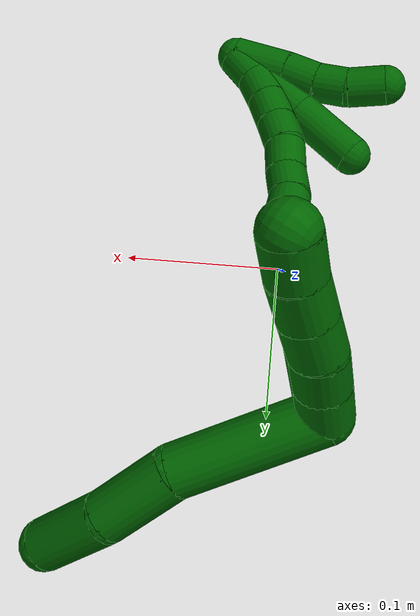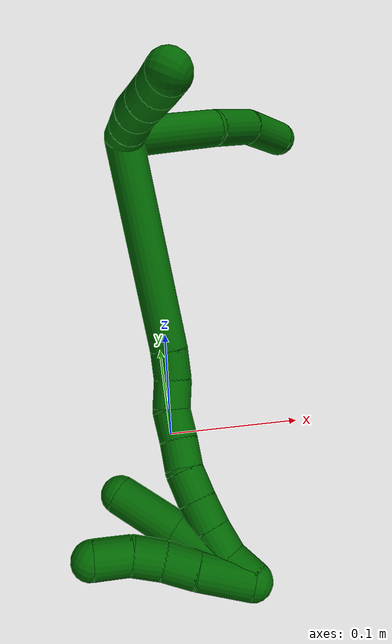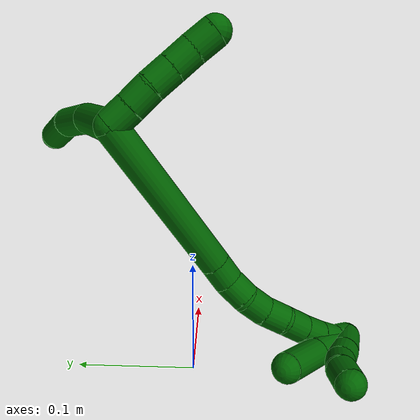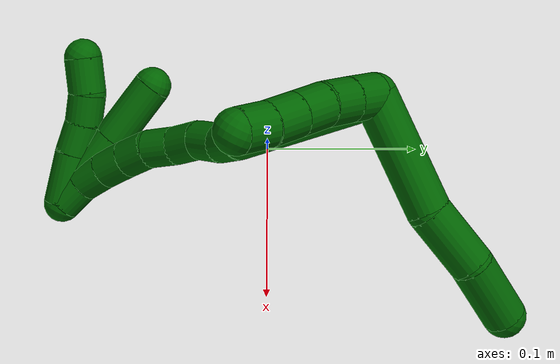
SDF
<sdf version="1.7">
 <world name="default">
  <model name="6">
   <static>0</static>
   <link name="6">
    <collision name="collision-cylinder-e_1_2_8">
     <pose>0.016595 0.022478 0.020988 -0.819665 0.494837 -0.218595</pose>
     <geometry><cylinder><radius>0.0125</radius><length>0.069891</length></cylinder></geometry>
     <surface>
      <friction><ode><mu>1.16</mu><mu2>1.16</mu2><slip1>0</slip1><slip2>0</slip2></ode></friction>
      <contact><ode><kp>1e+06</kp><kd>1</kd><max_vel>0</max_vel><min_depth>0.001</min_depth></ode></contact>
     </surface>
    </collision>
    <visual name="visual-cylinder-e_1_2_8">
     <pose>0.016595 0.022478 0.020988 -0.819665 0.494837 -0.218595</pose>
     <geometry><cylinder><radius>0.0125</radius><length>0.069891</length></cylinder></geometry>
     <material><ambient>0 0.392157 0.003922 1</ambient></material>
    </visual>
    <collision name="collision-cylinder-e_2_8_9">
     <pose>0.046605 0.056847 0.050135 -0.969421 0.749265 -0.40836</pose>
     <geometry><cylinder><radius>0.0125</radius><length>0.03939</length></cylinder></geometry>
     <surface>
      <friction><ode><mu>1.16</mu><mu2>1.16</mu2><slip1>0</slip1><slip2>0</slip2></ode></friction>
      <contact><ode><kp>1e+06</kp><kd>1</kd><max_vel>0</max_vel><min_depth>0.001</min_depth></ode></contact>
     </surface>
    </collision>
    <visual name="visual-cylinder-e_2_8_9">
     <pose>0.046605 0.056847 0.050135 -0.969421 0.749265 -0.40836</pose>
     <geometry><cylinder><radius>0.0125</radius><length>0.03939</length></cylinder></geometry>
     <material><ambient>0 0.392157 0.003922 1</ambient></material>
    </visual>
    <collision name="collision-cylinder-e_3_9_6">
     <pose>0.075659 0.076771 0.068559 -0.664021 0.876031 -0.32019</pose>
     <geometry><cylinder><radius>0.0125</radius><length>0.040719</length></cylinder></geometry>
     <surface>
      <friction><ode><mu>1.16</mu><mu2>1.16</mu2><slip1>0</slip1><slip2>0</slip2></ode></friction>
      <contact><ode><kp>1e+06</kp><kd>1</kd><max_vel>0</max_vel><min_depth>0.001</min_depth></ode></contact>
     </surface>
    </collision>
    <visual name="visual-cylinder-e_3_9_6">
     <pose>0.075659 0.076771 0.068559 -0.664021 0.876031 -0.32019</pose>
     <geometry><cylinder><radius>0.0125</radius><length>0.040719</length></cylinder></geometry>
     <material><ambient>0 0.392157 0.003922 1</ambient></material>
    </visual>
    <collision name="collision-cylinder-e_1_2_10">
     <pose>-0.009459 0.000251 0.003234 -0.077597 -1.24041 0.055435</pose>
     <geometry><cylinder><radius>0.0125</radius><length>0.02</length></cylinder></geometry>
     <surface>
      <friction><ode><mu>1.16</mu><mu2>1.16</mu2><slip1>0</slip1><slip2>0</slip2></ode></friction>
      <contact><ode><kp>1e+06</kp><kd>1</kd><max_vel>0</max_vel><min_depth>0.001</min_depth></ode></contact>
     </surface>
    </collision>
    <visual name="visual-cylinder-e_1_2_10">
     <pose>-0.009459 0.000251 0.003234 -0.077597 -1.24041 0.055435</pose>
     <geometry><cylinder><radius>0.0125</radius><length>0.02</length></cylinder></geometry>
     <material><ambient>0 0.392157 0.003922 1</ambient></material>
    </visual>
    <collision name="collision-cylinder-e_2_10_11">
     <pose>-0.028407 0.001203 0.009546 -0.223553 -1.24975 0.161571</pose>
     <geometry><cylinder><radius>0.0125</radius><length>0.02</length></cylinder></geometry>
     <surface>
      <friction><ode><mu>1.16</mu><mu2>1.16</mu2><slip1>0</slip1><slip2>0</slip2></ode></friction>
      <contact><ode><kp>1e+06</kp><kd>1</kd><max_vel>0</max_vel><min_depth>0.001</min_depth></ode></contact>
     </surface>
    </collision>
    <visual name="visual-cylinder-e_2_10_11">
     <pose>-0.028407 0.001203 0.009546 -0.223553 -1.24975 0.161571</pose>
     <geometry><cylinder><radius>0.0125</radius><length>0.02</length></cylinder></geometry>
     <material><ambient>0 0.392157 0.003922 1</ambient></material>
    </visual>
    <collision name="collision-cylinder-e_3_11_12">
     <pose>-0.046862 0.002539 0.017006 -0.144323 -1.1119 0.089767</pose>
     <geometry><cylinder><radius>0.0125</radius><length>0.02</length></cylinder></geometry>
     <surface>
      <friction><ode><mu>1.16</mu><mu2>1.16</mu2><slip1>0</slip1><slip2>0</slip2></ode></friction>
      <contact><ode><kp>1e+06</kp><kd>1</kd><max_vel>0</max_vel><min_depth>0.001</min_depth></ode></contact>
     </surface>
    </collision>
    <visual name="visual-cylinder-e_3_11_12">
     <pose>-0.046862 0.002539 0.017006 -0.144323 -1.1119 0.089767</pose>
     <geometry><cylinder><radius>0.0125</radius><length>0.02</length></cylinder></geometry>
     <material><ambient>0 0.392157 0.003922 1</ambient></material>
    </visual>
    <collision name="collision-cylinder-e_4_12_13">
     <pose>-0.064835 0.003855 0.02568 -0.156999 -1.12149 0.098717</pose>
     <geometry><cylinder><radius>0.0125</radius><length>0.02</length></cylinder></geometry>
     <surface>
      <friction><ode><mu>1.16</mu><mu2>1.16</mu2><slip1>0</slip1><slip2>0</slip2></ode></friction>
      <contact><ode><kp>1e+06</kp><kd>1</kd><max_vel>0</max_vel><min_depth>0.001</min_depth></ode></contact>
     </surface>
    </collision>
    <visual name="visual-cylinder-e_4_12_13">
     <pose>-0.064835 0.003855 0.02568 -0.156999 -1.12149 0.098717</pose>
     <geometry><cylinder><radius>0.0125</radius><length>0.02</length></cylinder></geometry>
     <material><ambient>0 0.392157 0.003922 1</ambient></material>
    </visual>
    <collision name="collision-cylinder-e_5_13_5">
     <pose>-0.083092 0.004482 0.033769 0.013704 -1.18104 -0.009186</pose>
     <geometry><cylinder><radius>0.0125</radius><length>0.02</length></cylinder></geometry>
     <surface>
      <friction><ode><mu>1.16</mu><mu2>1.16</mu2><slip1>0</slip1><slip2>0</slip2></ode></friction>
      <contact><ode><kp>1e+06</kp><kd>1</kd><max_vel>0</max_vel><min_depth>0.001</min_depth></ode></contact>
     </surface>
    </collision>
    <visual name="visual-cylinder-e_5_13_5">
     <pose>-0.083092 0.004482 0.033769 0.013704 -1.18104 -0.009186</pose>
     <geometry><cylinder><radius>0.0125</radius><length>0.02</length></cylinder></geometry>
     <material><ambient>0 0.392157 0.003922 1</ambient></material>
    </visual>
    <collision name="collision-cylinder-e_1_2_14">
     <pose>0.020474 -0.053508 0.039419 0.935864 0.298843 0.151867</pose>
     <geometry><cylinder><radius>0.0125</radius><length>0.139086</length></cylinder></geometry>
     <surface>
      <friction><ode><mu>1.16</mu><mu2>1.16</mu2><slip1>0</slip1><slip2>0</slip2></ode></friction>
      <contact><ode><kp>1e+06</kp><kd>1</kd><max_vel>0</max_vel><min_depth>0.001</min_depth></ode></contact>
     </surface>
    </collision>
    <visual name="visual-cylinder-e_1_2_14">
     <pose>0.020474 -0.053508 0.039419 0.935864 0.298843 0.151867</pose>
     <geometry><cylinder><radius>0.0125</radius><length>0.139086</length></cylinder></geometry>
     <material><ambient>0 0.392157 0.003922 1</ambient></material>
    </visual>
    <collision name="collision-cylinder-e_2_14_15">
     <pose>0.043743 -0.115296 0.083938 1.01879 0.279822 0.157003</pose>
     <geometry><cylinder><radius>0.0125</radius><length>0.020235</length></cylinder></geometry>
     <surface>
      <friction><ode><mu>1.16</mu><mu2>1.16</mu2><slip1>0</slip1><slip2>0</slip2></ode></friction>
      <contact><ode><kp>1e+06</kp><kd>1</kd><max_vel>0</max_vel><min_depth>0.001</min_depth></ode></contact>
     </surface>
    </collision>
    <visual name="visual-cylinder-e_2_14_15">
     <pose>0.043743 -0.115296 0.083938 1.01879 0.279822 0.157003</pose>
     <geometry><cylinder><radius>0.0125</radius><length>0.020235</length></cylinder></geometry>
     <material><ambient>0 0.392157 0.003922 1</ambient></material>
    </visual>
    <collision name="collision-cylinder-e_3_15_16">
     <pose>0.046954 -0.13292 0.092884 1.18029 0.041231 0.027617</pose>
     <geometry><cylinder><radius>0.0125</radius><length>0.020227</length></cylinder></geometry>
     <surface>
      <friction><ode><mu>1.16</mu><mu2>1.16</mu2><slip1>0</slip1><slip2>0</slip2></ode></friction>
      <contact><ode><kp>1e+06</kp><kd>1</kd><max_vel>0</max_vel><min_depth>0.001</min_depth></ode></contact>
     </surface>
    </collision>
    <visual name="visual-cylinder-e_3_15_16">
     <pose>0.046954 -0.13292 0.092884 1.18029 0.041231 0.027617</pose>
     <geometry><cylinder><radius>0.0125</radius><length>0.020227</length></cylinder></geometry>
     <material><ambient>0 0.392157 0.003922 1</ambient></material>
    </visual>
    <collision name="collision-cylinder-e_4_16_17">
     <pose>0.047632 -0.150163 0.103081 0.893544 0.025712 0.012319</pose>
     <geometry><cylinder><radius>0.0125</radius><length>0.020277</length></cylinder></geometry>
     <surface>
      <friction><ode><mu>1.16</mu><mu2>1.16</mu2><slip1>0</slip1><slip2>0</slip2></ode></friction>
      <contact><ode><kp>1e+06</kp><kd>1</kd><max_vel>0</max_vel><min_depth>0.001</min_depth></ode></contact>
     </surface>
    </collision>
    <visual name="visual-cylinder-e_4_16_17">
     <pose>0.047632 -0.150163 0.103081 0.893544 0.025712 0.012319</pose>
     <geometry><cylinder><radius>0.0125</radius><length>0.020277</length></cylinder></geometry>
     <material><ambient>0 0.392157 0.003922 1</ambient></material>
    </visual>
    <collision name="collision-cylinder-e_5_17_18">
     <pose>0.045919 -0.165971 0.115333 0.929889 -0.197346 -0.099234</pose>
     <geometry><cylinder><radius>0.0125</radius><length>0.020127</length></cylinder></geometry>
     <surface>
      <friction><ode><mu>1.16</mu><mu2>1.16</mu2><slip1>0</slip1><slip2>0</slip2></ode></friction>
      <contact><ode><kp>1e+06</kp><kd>1</kd><max_vel>0</max_vel><min_depth>0.001</min_depth></ode></contact>
     </surface>
    </collision>
    <visual name="visual-cylinder-e_5_17_18">
     <pose>0.045919 -0.165971 0.115333 0.929889 -0.197346 -0.099234</pose>
     <geometry><cylinder><radius>0.0125</radius><length>0.020127</length></cylinder></geometry>
     <material><ambient>0 0.392157 0.003922 1</ambient></material>
    </visual>
    <collision name="collision-cylinder-e_6_18_19">
     <pose>0.043586 -0.180518 0.128737 0.724212 -0.035971 -0.013627</pose>
     <geometry><cylinder><radius>0.0125</radius><length>0.020048</length></cylinder></geometry>
     <surface>
      <friction><ode><mu>1.16</mu><mu2>1.16</mu2><slip1>0</slip1><slip2>0</slip2></ode></friction>
      <contact><ode><kp>1e+06</kp><kd>1</kd><max_vel>0</max_vel><min_depth>0.001</min_depth></ode></contact>
     </surface>
    </collision>
    <visual name="visual-cylinder-e_6_18_19">
     <pose>0.043586 -0.180518 0.128737 0.724212 -0.035971 -0.013627</pose>
     <geometry><cylinder><radius>0.0125</radius><length>0.020048</length></cylinder></geometry>
     <material><ambient>0 0.392157 0.003922 1</ambient></material>
    </visual>
    <collision name="collision-cylinder-e_7_19_20">
     <pose>0.042514 -0.193373 0.144039 0.6731 -0.071219 -0.024926</pose>
     <geometry><cylinder><radius>0.0125</radius><length>0.02</length></cylinder></geometry>
     <surface>
      <friction><ode><mu>1.16</mu><mu2>1.16</mu2><slip1>0</slip1><slip2>0</slip2></ode></friction>
      <contact><ode><kp>1e+06</kp><kd>1</kd><max_vel>0</max_vel><min_depth>0.001</min_depth></ode></contact>
     </surface>
    </collision>
    <visual name="visual-cylinder-e_7_19_20">
     <pose>0.042514 -0.193373 0.144039 0.6731 -0.071219 -0.024926</pose>
     <geometry><cylinder><radius>0.0125</radius><length>0.02</length></cylinder></geometry>
     <material><ambient>0 0.392157 0.003922 1</ambient></material>
    </visual>
    <collision name="collision-cylinder-e_8_20_21">
     <pose>0.040941 -0.205119 0.160127 0.588114 -0.086181 -0.026113</pose>
     <geometry><cylinder><radius>0.0125</radius><length>0.02</length></cylinder></geometry>
     <surface>
      <friction><ode><mu>1.16</mu><mu2>1.16</mu2><slip1>0</slip1><slip2>0</slip2></ode></friction>
      <contact><ode><kp>1e+06</kp><kd>1</kd><max_vel>0</max_vel><min_depth>0.001</min_depth></ode></contact>
     </surface>
    </collision>
    <visual name="visual-cylinder-e_8_20_21">
     <pose>0.040941 -0.205119 0.160127 0.588114 -0.086181 -0.026113</pose>
     <geometry><cylinder><radius>0.0125</radius><length>0.02</length></cylinder></geometry>
     <material><ambient>0 0.392157 0.003922 1</ambient></material>
    </visual>
    <collision name="collision-cylinder-e_9_21_1">
     <pose>0.038445 -0.213229 0.177938 0.264891 -0.1643 -0.021937</pose>
     <geometry><cylinder><radius>0.0125</radius><length>0.02</length></cylinder></geometry>
     <surface>
      <friction><ode><mu>1.16</mu><mu2>1.16</mu2><slip1>0</slip1><slip2>0</slip2></ode></friction>
      <contact><ode><kp>1e+06</kp><kd>1</kd><max_vel>0</max_vel><min_depth>0.001</min_depth></ode></contact>
     </surface>
    </collision>
    <visual name="visual-cylinder-e_9_21_1">
     <pose>0.038445 -0.213229 0.177938 0.264891 -0.1643 -0.021937</pose>
     <geometry><cylinder><radius>0.0125</radius><length>0.02</length></cylinder></geometry>
     <material><ambient>0 0.392157 0.003922 1</ambient></material>
    </visual>
    <collision name="collision-cylinder-e_1_1_22">
     <pose>0.041268 -0.212855 0.160019 -3.03427 0.160185 -1.96209</pose>
     <geometry><cylinder><radius>0.0125</radius><length>0.055912</length></cylinder></geometry>
     <surface>
      <friction><ode><mu>1.16</mu><mu2>1.16</mu2><slip1>0</slip1><slip2>0</slip2></ode></friction>
      <contact><ode><kp>1e+06</kp><kd>1</kd><max_vel>0</max_vel><min_depth>0.001</min_depth></ode></contact>
     </surface>
    </collision>
    <visual name="visual-cylinder-e_1_1_22">
     <pose>0.041268 -0.212855 0.160019 -3.03427 0.160185 -1.96209</pose>
     <geometry><cylinder><radius>0.0125</radius><length>0.055912</length></cylinder></geometry>
     <material><ambient>0 0.392157 0.003922 1</ambient></material>
    </visual>
    <collision name="collision-cylinder-e_2_22_4">
     <pose>0.049103 -0.207651 0.110912 -3.03819 0.153731 -1.95835</pose>
     <geometry><cylinder><radius>0.0125</radius><length>0.044088</length></cylinder></geometry>
     <surface>
      <friction><ode><mu>1.16</mu><mu2>1.16</mu2><slip1>0</slip1><slip2>0</slip2></ode></friction>
      <contact><ode><kp>1e+06</kp><kd>1</kd><max_vel>0</max_vel><min_depth>0.001</min_depth></ode></contact>
     </surface>
    </collision>
    <visual name="visual-cylinder-e_2_22_4">
     <pose>0.049103 -0.207651 0.110912 -3.03819 0.153731 -1.95835</pose>
     <geometry><cylinder><radius>0.0125</radius><length>0.044088</length></cylinder></geometry>
     <material><ambient>0 0.392157 0.003922 1</ambient></material>
    </visual>
    <collision name="collision-cylinder-e_1_1_23">
     <pose>0.035049 -0.219709 0.170746 2.91247 -0.102227 -0.836725</pose>
     <geometry><cylinder><radius>0.0125</radius><length>0.034503</length></cylinder></geometry>
     <surface>
      <friction><ode><mu>1.16</mu><mu2>1.16</mu2><slip1>0</slip1><slip2>0</slip2></ode></friction>
      <contact><ode><kp>1e+06</kp><kd>1</kd><max_vel>0</max_vel><min_depth>0.001</min_depth></ode></contact>
     </surface>
    </collision>
    <visual name="visual-cylinder-e_1_1_23">
     <pose>0.035049 -0.219709 0.170746 2.91247 -0.102227 -0.836725</pose>
     <geometry><cylinder><radius>0.0125</radius><length>0.034503</length></cylinder></geometry>
     <material><ambient>0 0.392157 0.003922 1</ambient></material>
    </visual>
    <collision name="collision-cylinder-e_2_23_24">
     <pose>0.032786 -0.225269 0.143439 2.98594 -0.046815 -0.58329</pose>
     <geometry><cylinder><radius>0.0125</radius><length>0.021471</length></cylinder></geometry>
     <surface>
      <friction><ode><mu>1.16</mu><mu2>1.16</mu2><slip1>0</slip1><slip2>0</slip2></ode></friction>
      <contact><ode><kp>1e+06</kp><kd>1</kd><max_vel>0</max_vel><min_depth>0.001</min_depth></ode></contact>
     </surface>
    </collision>
    <visual name="visual-cylinder-e_2_23_24">
     <pose>0.032786 -0.225269 0.143439 2.98594 -0.046815 -0.58329</pose>
     <geometry><cylinder><radius>0.0125</radius><length>0.021471</length></cylinder></geometry>
     <material><ambient>0 0.392157 0.003922 1</ambient></material>
    </visual>
    <collision name="collision-cylinder-e_3_24_25">
     <pose>0.030084 -0.229327 0.123213 2.89784 -0.218111 -1.45889</pose>
     <geometry><cylinder><radius>0.0125</radius><length>0.020333</length></cylinder></geometry>
     <surface>
      <friction><ode><mu>1.16</mu><mu2>1.16</mu2><slip1>0</slip1><slip2>0</slip2></ode></friction>
      <contact><ode><kp>1e+06</kp><kd>1</kd><max_vel>0</max_vel><min_depth>0.001</min_depth></ode></contact>
     </surface>
    </collision>
    <visual name="visual-cylinder-e_3_24_25">
     <pose>0.030084 -0.229327 0.123213 2.89784 -0.218111 -1.45889</pose>
     <geometry><cylinder><radius>0.0125</radius><length>0.020333</length></cylinder></geometry>
     <material><ambient>0 0.392157 0.003922 1</ambient></material>
    </visual>
    <collision name="collision-cylinder-e_4_25_3">
     <pose>0.024256 -0.237192 0.103718 2.63524 -0.311274 -1.09031</pose>
     <geometry><cylinder><radius>0.0125</radius><length>0.023694</length></cylinder></geometry>
     <surface>
      <friction><ode><mu>1.16</mu><mu2>1.16</mu2><slip1>0</slip1><slip2>0</slip2></ode></friction>
      <contact><ode><kp>1e+06</kp><kd>1</kd><max_vel>0</max_vel><min_depth>0.001</min_depth></ode></contact>
     </surface>
    </collision>
    <visual name="visual-cylinder-e_4_25_3">
     <pose>0.024256 -0.237192 0.103718 2.63524 -0.311274 -1.09031</pose>
     <geometry><cylinder><radius>0.0125</radius><length>0.023694</length></cylinder></geometry>
     <material><ambient>0 0.392157 0.003922 1</ambient></material>
    </visual>
    <collision name="collision-sphere-3">
     <pose>0.020627 -0.242662 0.093856 0 -0 0</pose>
     <geometry><sphere><radius>0.0125</radius></sphere></geometry>
     <surface>
      <friction><ode><mu>1.16</mu><mu2>1.16</mu2><slip1>0</slip1><slip2>0</slip2></ode></friction>
      <contact><ode><kp>1e+06</kp><kd>1</kd><max_vel>0</max_vel><min_depth>0.001</min_depth></ode></contact>
     </surface>
    </collision>
    <visual name="visual-sphere-3">
     <pose>0.020627 -0.242662 0.093856 0 -0 0</pose>
     <geometry><sphere><radius>0.0125</radius></sphere></geometry>
     <material><ambient>0 0.392157 0.003922 1</ambient></material>
    </visual>
    <collision name="collision-sphere-25">
     <pose>0.027884 -0.231723 0.113581 0 -0 0</pose>
     <geometry><sphere><radius>0.0125</radius></sphere></geometry>
     <surface>
      <friction><ode><mu>1.16</mu><mu2>1.16</mu2><slip1>0</slip1><slip2>0</slip2></ode></friction>
      <contact><ode><kp>1e+06</kp><kd>1</kd><max_vel>0</max_vel><min_depth>0.001</min_depth></ode></contact>
     </surface>
    </collision>
    <visual name="visual-sphere-25">
     <pose>0.027884 -0.231723 0.113581 0 -0 0</pose>
     <geometry><sphere><radius>0.0125</radius></sphere></geometry>
     <material><ambient>0 0.392157 0.003922 1</ambient></material>
    </visual>
    <collision name="collision-sphere-24">
     <pose>0.032284 -0.226932 0.132845 0 -0 0</pose>
     <geometry><sphere><radius>0.0125</radius></sphere></geometry>
     <surface>
      <friction><ode><mu>1.16</mu><mu2>1.16</mu2><slip1>0</slip1><slip2>0</slip2></ode></friction>
      <contact><ode><kp>1e+06</kp><kd>1</kd><max_vel>0</max_vel><min_depth>0.001</min_depth></ode></contact>
     </surface>
    </collision>
    <visual name="visual-sphere-24">
     <pose>0.032284 -0.226932 0.132845 0 -0 0</pose>
     <geometry><sphere><radius>0.0125</radius></sphere></geometry>
     <material><ambient>0 0.392157 0.003922 1</ambient></material>
    </visual>
    <collision name="collision-sphere-23">
     <pose>0.033288 -0.223607 0.154033 0 -0 0</pose>
     <geometry><sphere><radius>0.0125</radius></sphere></geometry>
     <surface>
      <friction><ode><mu>1.16</mu><mu2>1.16</mu2><slip1>0</slip1><slip2>0</slip2></ode></friction>
      <contact><ode><kp>1e+06</kp><kd>1</kd><max_vel>0</max_vel><min_depth>0.001</min_depth></ode></contact>
     </surface>
    </collision>
    <visual name="visual-sphere-23">
     <pose>0.033288 -0.223607 0.154033 0 -0 0</pose>
     <geometry><sphere><radius>0.0125</radius></sphere></geometry>
     <material><ambient>0 0.392157 0.003922 1</ambient></material>
    </visual>
    <collision name="collision-sphere-4">
     <pose>0.052478 -0.205402 0.089245 0 -0 0</pose>
     <geometry><sphere><radius>0.0125</radius></sphere></geometry>
     <surface>
      <friction><ode><mu>1.16</mu><mu2>1.16</mu2><slip1>0</slip1><slip2>0</slip2></ode></friction>
      <contact><ode><kp>1e+06</kp><kd>1</kd><max_vel>0</max_vel><min_depth>0.001</min_depth></ode></contact>
     </surface>
    </collision>
    <visual name="visual-sphere-4">
     <pose>0.052478 -0.205402 0.089245 0 -0 0</pose>
     <geometry><sphere><radius>0.0125</radius></sphere></geometry>
     <material><ambient>0 0.392157 0.003922 1</ambient></material>
    </visual>
    <collision name="collision-sphere-22">
     <pose>0.045727 -0.209899 0.13258 0 -0 0</pose>
     <geometry><sphere><radius>0.0125</radius></sphere></geometry>
     <surface>
      <friction><ode><mu>1.16</mu><mu2>1.16</mu2><slip1>0</slip1><slip2>0</slip2></ode></friction>
      <contact><ode><kp>1e+06</kp><kd>1</kd><max_vel>0</max_vel><min_depth>0.001</min_depth></ode></contact>
     </surface>
    </collision>
    <visual name="visual-sphere-22">
     <pose>0.045727 -0.209899 0.13258 0 -0 0</pose>
     <geometry><sphere><radius>0.0125</radius></sphere></geometry>
     <material><ambient>0 0.392157 0.003922 1</ambient></material>
    </visual>
    <collision name="collision-sphere-1">
     <pose>0.036809 -0.215812 0.187459 0 -0 0</pose>
     <geometry><sphere><radius>0.0125</radius></sphere></geometry>
     <surface>
      <friction><ode><mu>1.16</mu><mu2>1.16</mu2><slip1>0</slip1><slip2>0</slip2></ode></friction>
      <contact><ode><kp>1e+06</kp><kd>1</kd><max_vel>0</max_vel><min_depth>0.001</min_depth></ode></contact>
     </surface>
    </collision>
    <visual name="visual-sphere-1">
     <pose>0.036809 -0.215812 0.187459 0 -0 0</pose>
     <geometry><sphere><radius>0.0125</radius></sphere></geometry>
     <material><ambient>0 0.392157 0.003922 1</ambient></material>
    </visual>
    <collision name="collision-sphere-21">
     <pose>0.040081 -0.210646 0.168416 0 -0 0</pose>
     <geometry><sphere><radius>0.0125</radius></sphere></geometry>
     <surface>
      <friction><ode><mu>1.16</mu><mu2>1.16</mu2><slip1>0</slip1><slip2>0</slip2></ode></friction>
      <contact><ode><kp>1e+06</kp><kd>1</kd><max_vel>0</max_vel><min_depth>0.001</min_depth></ode></contact>
     </surface>
    </collision>
    <visual name="visual-sphere-21">
     <pose>0.040081 -0.210646 0.168416 0 -0 0</pose>
     <geometry><sphere><radius>0.0125</radius></sphere></geometry>
     <material><ambient>0 0.392157 0.003922 1</ambient></material>
    </visual>
    <collision name="collision-sphere-11">
     <pose>-0.037896 0.001902 0.012623 0 -0 0</pose>
     <geometry><sphere><radius>0.0125</radius></sphere></geometry>
     <surface>
      <friction><ode><mu>1.16</mu><mu2>1.16</mu2><slip1>0</slip1><slip2>0</slip2></ode></friction>
      <contact><ode><kp>1e+06</kp><kd>1</kd><max_vel>0</max_vel><min_depth>0.001</min_depth></ode></contact>
     </surface>
    </collision>
    <visual name="visual-sphere-11">
     <pose>-0.037896 0.001902 0.012623 0 -0 0</pose>
     <geometry><sphere><radius>0.0125</radius></sphere></geometry>
     <material><ambient>0 0.392157 0.003922 1</ambient></material>
    </visual>
    <collision name="collision-sphere-10">
     <pose>-0.018918 0.000503 0.006469 0 -0 0</pose>
     <geometry><sphere><radius>0.0125</radius></sphere></geometry>
     <surface>
      <friction><ode><mu>1.16</mu><mu2>1.16</mu2><slip1>0</slip1><slip2>0</slip2></ode></friction>
      <contact><ode><kp>1e+06</kp><kd>1</kd><max_vel>0</max_vel><min_depth>0.001</min_depth></ode></contact>
     </surface>
    </collision>
    <visual name="visual-sphere-10">
     <pose>-0.018918 0.000503 0.006469 0 -0 0</pose>
     <geometry><sphere><radius>0.0125</radius></sphere></geometry>
     <material><ambient>0 0.392157 0.003922 1</ambient></material>
    </visual>
    <collision name="collision-sphere-6">
     <pose>0.0913 0.084803 0.078824 0 -0 0</pose>
     <geometry><sphere><radius>0.0125</radius></sphere></geometry>
     <surface>
      <friction><ode><mu>1.16</mu><mu2>1.16</mu2><slip1>0</slip1><slip2>0</slip2></ode></friction>
      <contact><ode><kp>1e+06</kp><kd>1</kd><max_vel>0</max_vel><min_depth>0.001</min_depth></ode></contact>
     </surface>
    </collision>
    <visual name="visual-sphere-6">
     <pose>0.0913 0.084803 0.078824 0 -0 0</pose>
     <geometry><sphere><radius>0.0125</radius></sphere></geometry>
     <material><ambient>0 0.392157 0.003922 1</ambient></material>
    </visual>
    <collision name="collision-sphere-9">
     <pose>0.060019 0.068738 0.058294 0 -0 0</pose>
     <geometry><sphere><radius>0.0125</radius></sphere></geometry>
     <surface>
      <friction><ode><mu>1.16</mu><mu2>1.16</mu2><slip1>0</slip1><slip2>0</slip2></ode></friction>
      <contact><ode><kp>1e+06</kp><kd>1</kd><max_vel>0</max_vel><min_depth>0.001</min_depth></ode></contact>
     </surface>
    </collision>
    <visual name="visual-sphere-9">
     <pose>0.060019 0.068738 0.058294 0 -0 0</pose>
     <geometry><sphere><radius>0.0125</radius></sphere></geometry>
     <material><ambient>0 0.392157 0.003922 1</ambient></material>
    </visual>
    <collision name="collision-sphere-2">
     <geometry><sphere><radius>0.0125</radius></sphere></geometry>
     <surface>
      <friction><ode><mu>1.16</mu><mu2>1.16</mu2><slip1>0</slip1><slip2>0</slip2></ode></friction>
      <contact><ode><kp>1e+06</kp><kd>1</kd><max_vel>0</max_vel><min_depth>0.001</min_depth></ode></contact>
     </surface>
    </collision>
    <visual name="visual-sphere-2">
     <geometry><sphere><radius>0.0125</radius></sphere></geometry>
     <material><ambient>0 0.392157 0.003922 1</ambient></material>
    </visual>
    <collision name="collision-sphere-19">
     <pose>0.043225 -0.187155 0.13624 0 -0 0</pose>
     <geometry><sphere><radius>0.0125</radius></sphere></geometry>
     <surface>
      <friction><ode><mu>1.16</mu><mu2>1.16</mu2><slip1>0</slip1><slip2>0</slip2></ode></friction>
      <contact><ode><kp>1e+06</kp><kd>1</kd><max_vel>0</max_vel><min_depth>0.001</min_depth></ode></contact>
     </surface>
    </collision>
    <visual name="visual-sphere-19">
     <pose>0.043225 -0.187155 0.13624 0 -0 0</pose>
     <geometry><sphere><radius>0.0125</radius></sphere></geometry>
     <material><ambient>0 0.392157 0.003922 1</ambient></material>
    </visual>
    <collision name="collision-sphere-8">
     <pose>0.03319 0.044957 0.041977 0 -0 0</pose>
     <geometry><sphere><radius>0.0125</radius></sphere></geometry>
     <surface>
      <friction><ode><mu>1.16</mu><mu2>1.16</mu2><slip1>0</slip1><slip2>0</slip2></ode></friction>
      <contact><ode><kp>1e+06</kp><kd>1</kd><max_vel>0</max_vel><min_depth>0.001</min_depth></ode></contact>
     </surface>
    </collision>
    <visual name="visual-sphere-8">
     <pose>0.03319 0.044957 0.041977 0 -0 0</pose>
     <geometry><sphere><radius>0.0125</radius></sphere></geometry>
     <material><ambient>0 0.392157 0.003922 1</ambient></material>
    </visual>
    <collision name="collision-sphere-12">
     <pose>-0.055827 0.003176 0.02139 0 -0 0</pose>
     <geometry><sphere><radius>0.0125</radius></sphere></geometry>
     <surface>
      <friction><ode><mu>1.16</mu><mu2>1.16</mu2><slip1>0</slip1><slip2>0</slip2></ode></friction>
      <contact><ode><kp>1e+06</kp><kd>1</kd><max_vel>0</max_vel><min_depth>0.001</min_depth></ode></contact>
     </surface>
    </collision>
    <visual name="visual-sphere-12">
     <pose>-0.055827 0.003176 0.02139 0 -0 0</pose>
     <geometry><sphere><radius>0.0125</radius></sphere></geometry>
     <material><ambient>0 0.392157 0.003922 1</ambient></material>
    </visual>
    <collision name="collision-sphere-13">
     <pose>-0.073842 0.004534 0.02997 0 -0 0</pose>
     <geometry><sphere><radius>0.0125</radius></sphere></geometry>
     <surface>
      <friction><ode><mu>1.16</mu><mu2>1.16</mu2><slip1>0</slip1><slip2>0</slip2></ode></friction>
      <contact><ode><kp>1e+06</kp><kd>1</kd><max_vel>0</max_vel><min_depth>0.001</min_depth></ode></contact>
     </surface>
    </collision>
    <visual name="visual-sphere-13">
     <pose>-0.073842 0.004534 0.02997 0 -0 0</pose>
     <geometry><sphere><radius>0.0125</radius></sphere></geometry>
     <material><ambient>0 0.392157 0.003922 1</ambient></material>
    </visual>
    <collision name="collision-sphere-5">
     <pose>-0.092342 0.00443 0.037568 0 -0 0</pose>
     <geometry><sphere><radius>0.0125</radius></sphere></geometry>
     <surface>
      <friction><ode><mu>1.16</mu><mu2>1.16</mu2><slip1>0</slip1><slip2>0</slip2></ode></friction>
      <contact><ode><kp>1e+06</kp><kd>1</kd><max_vel>0</max_vel><min_depth>0.001</min_depth></ode></contact>
     </surface>
    </collision>
    <visual name="visual-sphere-5">
     <pose>-0.092342 0.00443 0.037568 0 -0 0</pose>
     <geometry><sphere><radius>0.0125</radius></sphere></geometry>
     <material><ambient>0 0.392157 0.003922 1</ambient></material>
    </visual>
    <collision name="collision-sphere-14">
     <pose>0.040949 -0.107017 0.078839 0 -0 0</pose>
     <geometry><sphere><radius>0.0125</radius></sphere></geometry>
     <surface>
      <friction><ode><mu>1.16</mu><mu2>1.16</mu2><slip1>0</slip1><slip2>0</slip2></ode></friction>
      <contact><ode><kp>1e+06</kp><kd>1</kd><max_vel>0</max_vel><min_depth>0.001</min_depth></ode></contact>
     </surface>
    </collision>
    <visual name="visual-sphere-14">
     <pose>0.040949 -0.107017 0.078839 0 -0 0</pose>
     <geometry><sphere><radius>0.0125</radius></sphere></geometry>
     <material><ambient>0 0.392157 0.003922 1</ambient></material>
    </visual>
    <collision name="collision-sphere-15">
     <pose>0.046537 -0.123576 0.089037 0 -0 0</pose>
     <geometry><sphere><radius>0.0125</radius></sphere></geometry>
     <surface>
      <friction><ode><mu>1.16</mu><mu2>1.16</mu2><slip1>0</slip1><slip2>0</slip2></ode></friction>
      <contact><ode><kp>1e+06</kp><kd>1</kd><max_vel>0</max_vel><min_depth>0.001</min_depth></ode></contact>
     </surface>
    </collision>
    <visual name="visual-sphere-15">
     <pose>0.046537 -0.123576 0.089037 0 -0 0</pose>
     <geometry><sphere><radius>0.0125</radius></sphere></geometry>
     <material><ambient>0 0.392157 0.003922 1</ambient></material>
    </visual>
    <collision name="collision-sphere-16">
     <pose>0.047371 -0.142264 0.09673 0 -0 0</pose>
     <geometry><sphere><radius>0.0125</radius></sphere></geometry>
     <surface>
      <friction><ode><mu>1.16</mu><mu2>1.16</mu2><slip1>0</slip1><slip2>0</slip2></ode></friction>
      <contact><ode><kp>1e+06</kp><kd>1</kd><max_vel>0</max_vel><min_depth>0.001</min_depth></ode></contact>
     </surface>
    </collision>
    <visual name="visual-sphere-16">
     <pose>0.047371 -0.142264 0.09673 0 -0 0</pose>
     <geometry><sphere><radius>0.0125</radius></sphere></geometry>
     <material><ambient>0 0.392157 0.003922 1</ambient></material>
    </visual>
    <collision name="collision-sphere-17">
     <pose>0.047893 -0.158061 0.109433 0 -0 0</pose>
     <geometry><sphere><radius>0.0125</radius></sphere></geometry>
     <surface>
      <friction><ode><mu>1.16</mu><mu2>1.16</mu2><slip1>0</slip1><slip2>0</slip2></ode></friction>
      <contact><ode><kp>1e+06</kp><kd>1</kd><max_vel>0</max_vel><min_depth>0.001</min_depth></ode></contact>
     </surface>
    </collision>
    <visual name="visual-sphere-17">
     <pose>0.047893 -0.158061 0.109433 0 -0 0</pose>
     <geometry><sphere><radius>0.0125</radius></sphere></geometry>
     <material><ambient>0 0.392157 0.003922 1</ambient></material>
    </visual>
    <collision name="collision-sphere-18">
     <pose>0.043946 -0.173881 0.121233 0 -0 0</pose>
     <geometry><sphere><radius>0.0125</radius></sphere></geometry>
     <surface>
      <friction><ode><mu>1.16</mu><mu2>1.16</mu2><slip1>0</slip1><slip2>0</slip2></ode></friction>
      <contact><ode><kp>1e+06</kp><kd>1</kd><max_vel>0</max_vel><min_depth>0.001</min_depth></ode></contact>
     </surface>
    </collision>
    <visual name="visual-sphere-18">
     <pose>0.043946 -0.173881 0.121233 0 -0 0</pose>
     <geometry><sphere><radius>0.0125</radius></sphere></geometry>
     <material><ambient>0 0.392157 0.003922 1</ambient></material>
    </visual>
    <collision name="collision-sphere-20">
     <pose>0.041802 -0.199591 0.151838 0 -0 0</pose>
     <geometry><sphere><radius>0.0125</radius></sphere></geometry>
     <surface>
      <friction><ode><mu>1.16</mu><mu2>1.16</mu2><slip1>0</slip1><slip2>0</slip2></ode></friction>
      <contact><ode><kp>1e+06</kp><kd>1</kd><max_vel>0</max_vel><min_depth>0.001</min_depth></ode></contact>
     </surface>
    </collision>
    <visual name="visual-sphere-20">
     <pose>0.041802 -0.199591 0.151838 0 -0 0</pose>
     <geometry><sphere><radius>0.0125</radius></sphere></geometry>
     <material><ambient>0 0.392157 0.003922 1</ambient></material>
    </visual>
    <inertial>
     <pose>0.025173 -0.095035 0.081978 0 -0 0</pose>
     <mass>0.75</mass>
     <inertia><ixx>0.000259</ixx><ixy>0</ixy><ixz>0</ixz><iyy>0.00018</iyy><iyz>0</iyz><izz>7.8e-05</izz></inertia>
    </inertial>
   </link>
   <pose>-0.015869 0.057641 0.21774 1.98629 0.86092 1.40726</pose>
  </model>
 </world>
</sdf>
